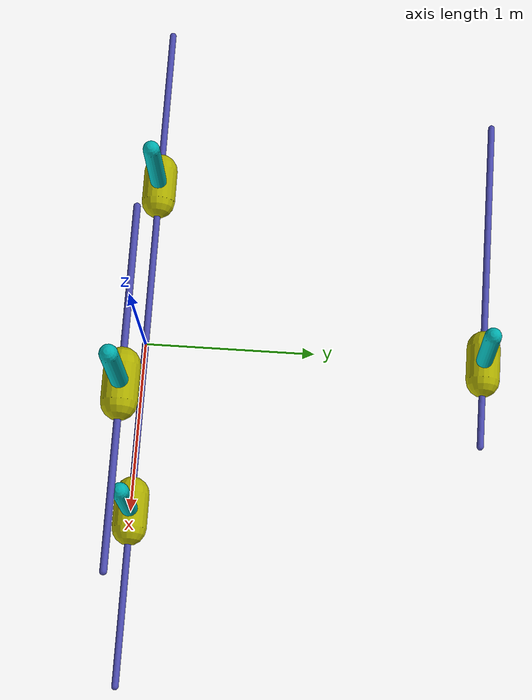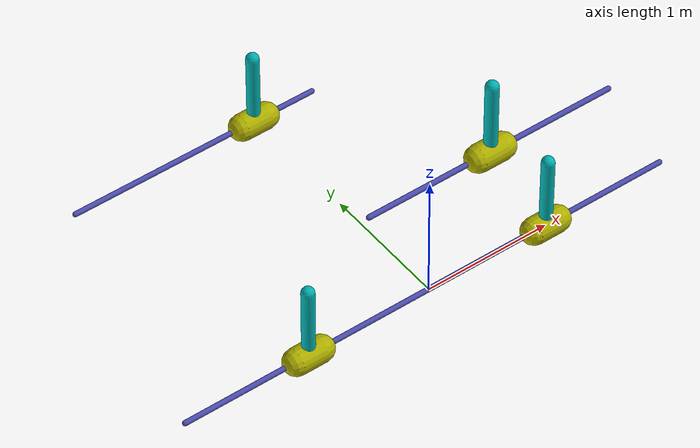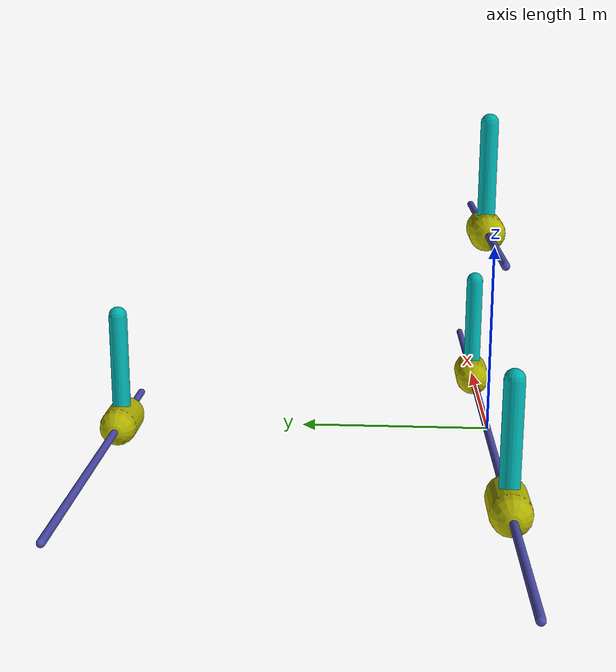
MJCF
<mujoco model="multi inverted pendulum">
	<compiler inertiafromgeom="true"/>
	<default>
		<joint armature="0" damping="1" limited="true"/>
		<geom contype="0" friction="1 0.1 0.1" rgba="0.7 0.7 0 1"/>
		<tendon/>
		<motor ctrlrange="-3 3"/>
	</default>
	<option gravity="0 0 -9.81" integrator="RK4" timestep="0.02"/>
	<size nstack="3000"/>
	<worldbody>
		<!--geom name="ground" type="plane" pos="0 0 0" /-->
		<!-- 1st body -->
		<geom name="rail_1" pos="1 0 0" quat="0.707 0 0.707 0" rgba="0.3 0.3 0.7 1" size="0.02 1" type="capsule"/>
		<body name="cart_1" pos="1 0 0">
			<joint axis="1 0 0" limited="true" name="slider_1" pos="0 0 0" range="-1 1" type="slide"/>
			<geom name="cart_geom_1" pos="0 0 0" quat="0.707 0 0.707 0" size="0.1 0.1" type="capsule"/>
			<body name="pole_1" pos="0 0 0">
				<joint axis="0 1 0" name="hinge_1" pos="0 0 0" range="-90 90" type="hinge"/>
				<geom fromto="0 0 0 0.001 0 0.6" name="cpole_1" rgba="0 0.7 0.7 1" size="0.049 0.3" type="capsule"/>
			</body>
		</body>

		<!-- 2nd body -->
		<geom name="rail_2" pos="-0.5 2 0" quat="0.707 0 0.707 0" rgba="0.3 0.3 0.7 1" size="0.02 1" type="capsule"/>
		<body name="cart_2" pos="0 2 0">
			<joint axis="1 0 0" limited="true" name="slider_2" pos="0 0 0" range="-1 1" type="slide"/>
			<geom name="cart_geom_2" pos="0 0 0" quat="0.707 0 0.707 0" size="0.1 0.1" type="capsule"/>
			<body name="pole_2" pos="0 0 0">
				<joint axis="0 1 0" name="hinge_2" pos="0 0 0" range="-90 90" type="hinge"/>
				<geom fromto="0 0 0 0.001 0 0.6" name="cpole_2" rgba="0 0.7 0.7 1" size="0.049 0.3" type="capsule"/>
			</body>
		</body>

		<!-- 3rd body -->
		<geom name="rail_3" pos="0.5 0 1" quat="0.707 0 0.707 0" rgba="0.3 0.3 0.7 1" size="0.02 1" type="capsule"/>
		<body name="cart_3" pos="0.5 0 1">
			<joint axis="1 0 0" limited="true" name="slider_3" pos="0 0 0" range="-1 1" type="slide"/>
			<geom name="cart_geom_3" pos="0 0 0" quat="0.707 0 0.707 0" size="0.1 0.1" type="capsule"/>
			<body name="pole_3" pos="0 0 0">
				<joint axis="0 1 0" name="hinge_3" pos="0 0 0" range="-90 90" type="hinge"/>
				<geom fromto="0 0 0 0.001 0 0.6" name="cpole_3" rgba="0 0.7 0.7 1" size="0.049 0.3" type="capsule"/>
			</body>
		</body>

		<!-- 4th body -->
		<geom name="rail_4" pos="-1 0 0" quat="0.707 0 0.707 0" rgba="0.3 0.3 0.7 1" size="0.02 1" type="capsule"/>
		<body name="cart_4" pos="-1 0 0">
			<joint axis="1 0 0" limited="true" name="slider_4" pos="0 0 0" range="-1 1" type="slide"/>
			<geom name="cart_geom_4" pos="0 0 0" quat="0.707 0 0.707 0" size="0.1 0.1" type="capsule"/>
			<body name="pole_4" pos="0 0 0">
				<joint axis="0 1 0" name="hinge_4" pos="0 0 0" range="-90 90" type="hinge"/>
				<geom fromto="0 0 0 0.001 0 0.6" name="cpole_4" rgba="0 0.7 0.7 1" size="0.049 0.3" type="capsule"/>
			</body>
		</body>
	</worldbody>
	<actuator>
		<motor ctrllimited="true" ctrlrange="-3 3" gear="100" joint="slider_1" name="slide_1"/>
		<motor ctrllimited="true" ctrlrange="-3 3" gear="100" joint="slider_2" name="slide_2"/>
		<motor ctrllimited="true" ctrlrange="-3 3" gear="100" joint="slider_3" name="slide_3"/>
		<motor ctrllimited="true" ctrlrange="-3 3" gear="100" joint="slider_4" name="slide_4"/>
	</actuator>
</mujoco>
